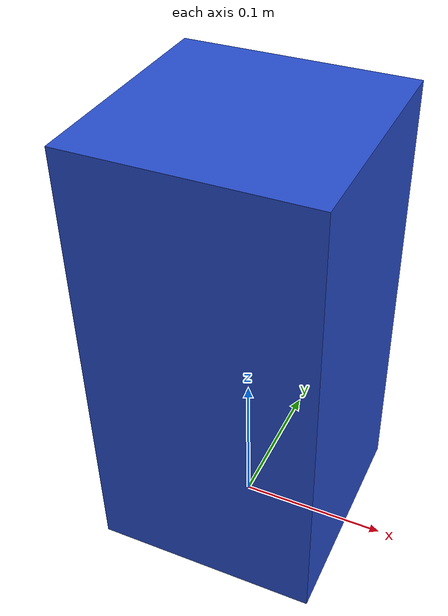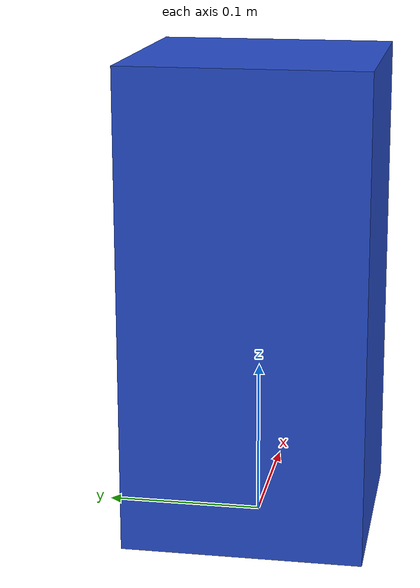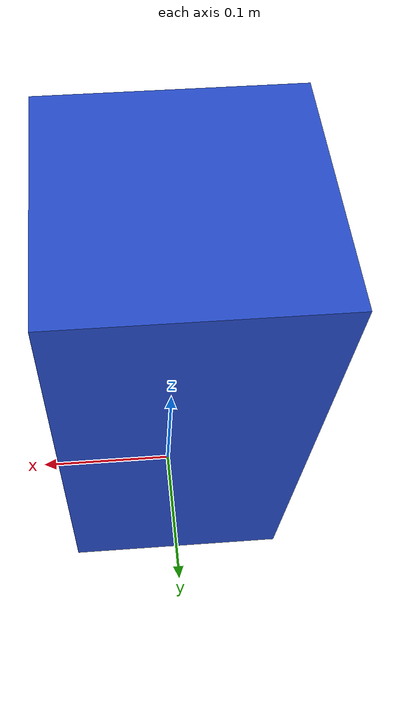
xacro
<?xml version="1.0"?>
<robot name="obstacles" xmlns:xacro="http://www.ros.org/wiki/xacro">

	<!-- Import your models -->
	<xacro:include filename="$(find od_description)/urdf/obstacle.urdf.xacro"/>

	<!-- Build your comprehensive robot -->

        <link name="world"/>

	<gazebo reference="world">
		<static>true</static>
	</gazebo>

	<xacro:obstacle name="obs1">
		<origin xyz="0 0.3 0" rpy="0 0 0"/>
	</xacro:obstacle>
</robot>

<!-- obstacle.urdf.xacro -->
<robot name="obstacle" xmlns:xacro="http://www.ros.org/wiki/xacro" >

  <!-- Constants setting for obstacle dimensions -->
    <!-- width and thick of moving plane -->
    <xacro:property name="p_width" value="0.20" />
    <xacro:property name="p_thick" value="0.01" />

    <!-- width and thick of obstacle -->
    <xacro:property name="o_width" value="0.15" />
    <xacro:property name="o_length" value="0.15" />
    <xacro:property name="o_height" value="0.3" />

    <!-- Import your model behavior in Gazebo -->
    <xacro:include filename="$(find od_description)/urdf/obstacle.gazebo.xacro" />
    <!-- Import Rviz colors -->
    <xacro:include filename="$(find od_description)/urdf/materials.xacro" />

    <!-- Define your rrbot model -->
    <xacro:macro name="obstacle" params="name *origin">

    <!-- Propagate the name to all elements to make them unique -->
<!-- * * * Link Definitions * * * -->

<!-- y moving plane -->

    <link name="${name}_x_link">
 	<inertial>
            <origin rpy="0.0 0 0" xyz="0 0 0"/>
            <mass value="1" />
            <inertia ixx="7.58333333333e-07" ixy="0.0" ixz="0.0" iyy="7.58333333333e-07" iyz="0.0" izz="1.25e-06"/>
        </inertial>
    </link>

    <joint name="${name}_x_joint" type="prismatic">
        <origin xyz="0 0 0" rpy="0.0 0.0 0.0"/>
        <parent link="world" />
        <child link="${name}_x_link" />
        <axis xyz="1 0 0" />
        <limit effort="10000" lower="-15" upper="15.0" velocity="100" />
    </joint>

<!-- y moving plane -->

    <link name="${name}_y_link">
 	    <inertial>
            <origin rpy="0.0 0 0" xyz="0 0 0"/>
            <mass value="1" />
            <inertia ixx="7.58333333333e-07" ixy="0.0" ixz="0.0" iyy="7.58333333333e-07" iyz="0.0" izz="1.25e-06"/>
        </inertial>
    </link>

    <joint name="${name}_y_joint" type="prismatic">
        <origin xyz="0 0 0" rpy="0.0 0.0 0.0"/>
        <parent link="${name}_x_link" />
        <child link="${name}_y_link" />
        <axis xyz="0 1 0" />
        <limit effort="10000" lower="-15.0" upper="15.0" velocity="100" />
    </joint>

<!-- the obstacle -->

    <link name="${name}_entity_link">
 	<inertial>
            <origin rpy="0.0 0 0" xyz="0 0 0"/>
            <mass value="1" />
            <inertia ixx="4.16666666667e-05" ixy="0.0" ixz="0.0" iyy="4.16666666667e-05" iyz="0.0" izz="4.16666666667e-05"/>
        </inertial>
        <collision>
            <origin rpy="0.0 0 0" xyz="0 0 0"/>
            <geometry>
                <box size="${o_width} ${o_length} ${o_height}"/>
            </geometry>
        </collision>
        <visual>
            <origin rpy="0.0 0 0" xyz="0 0 0"/>
            <geometry>
                <box size="${o_width} ${o_length} ${o_height}"/>
            </geometry>
        </visual>
    </link>

    <joint name="${name}_entity_link_joint" type="fixed">
        <parent link="${name}_y_link"/>
        <child link="${name}_entity_link"/>
        <origin xyz="0 0 ${o_height/2}" rpy="0 0 0"/>
    </joint>

    <!-- Instance your model behavior in Gazebo keeping the name -->
    <xacro:obstacle_gazebo name="${name}"/>

    </xacro:macro>

</robot>
